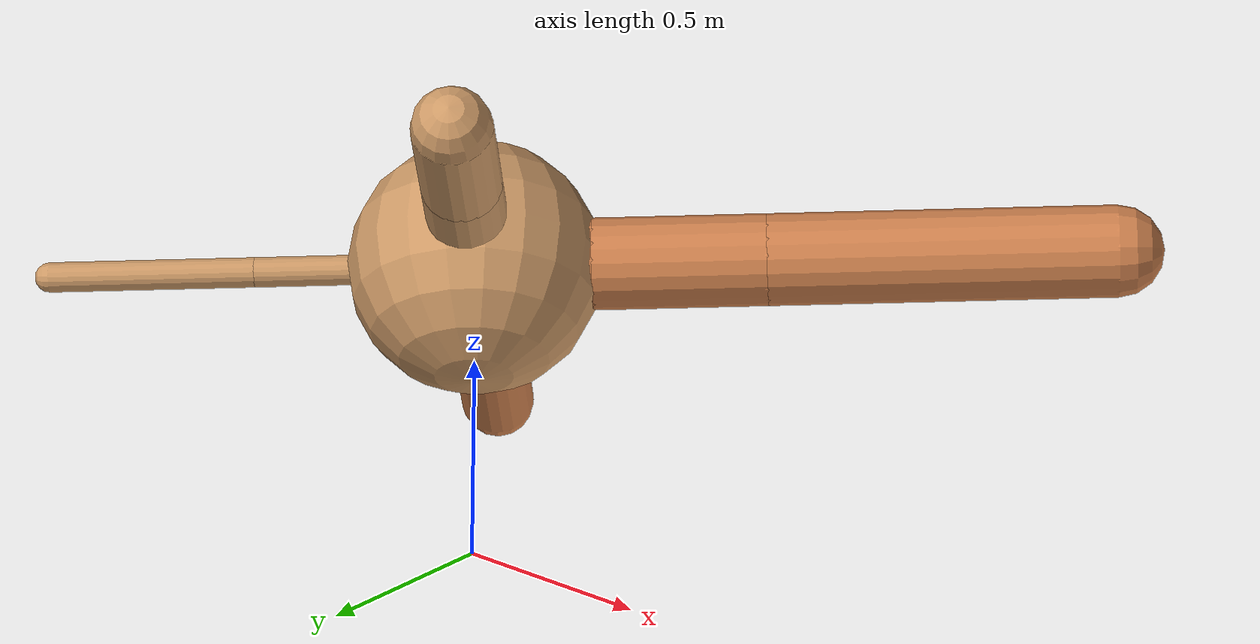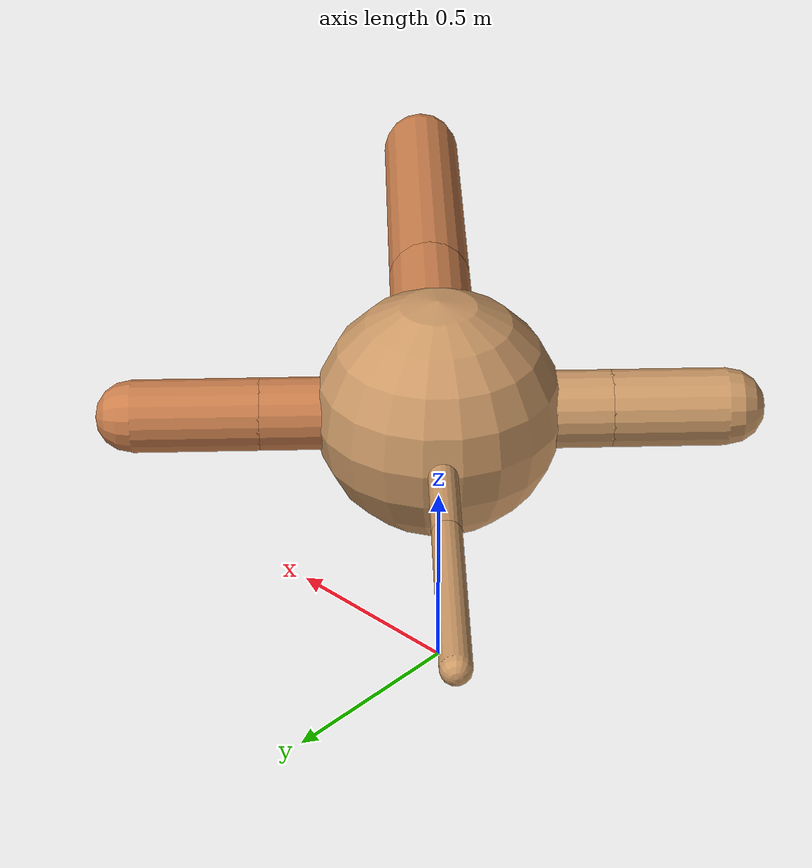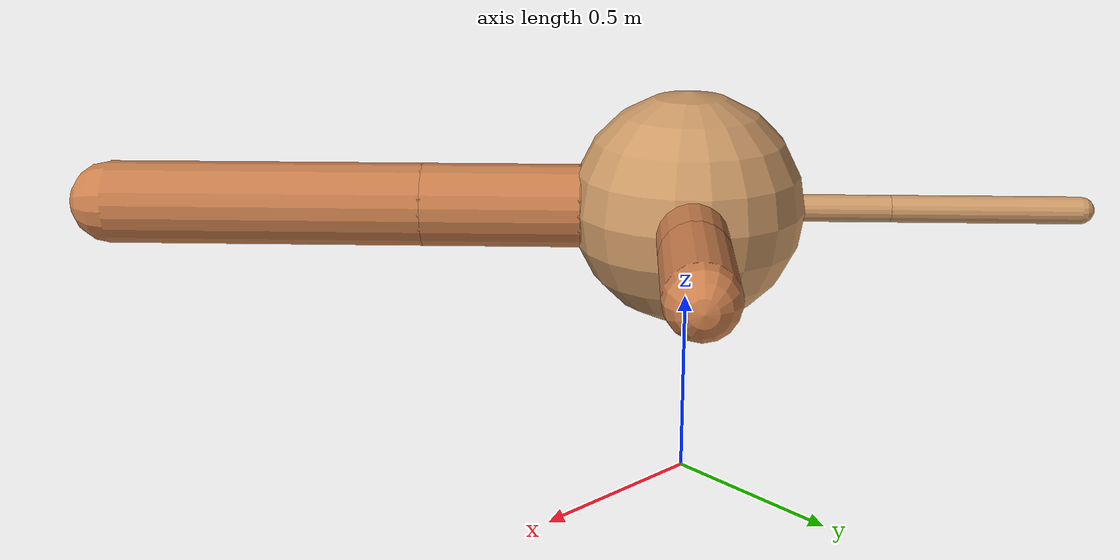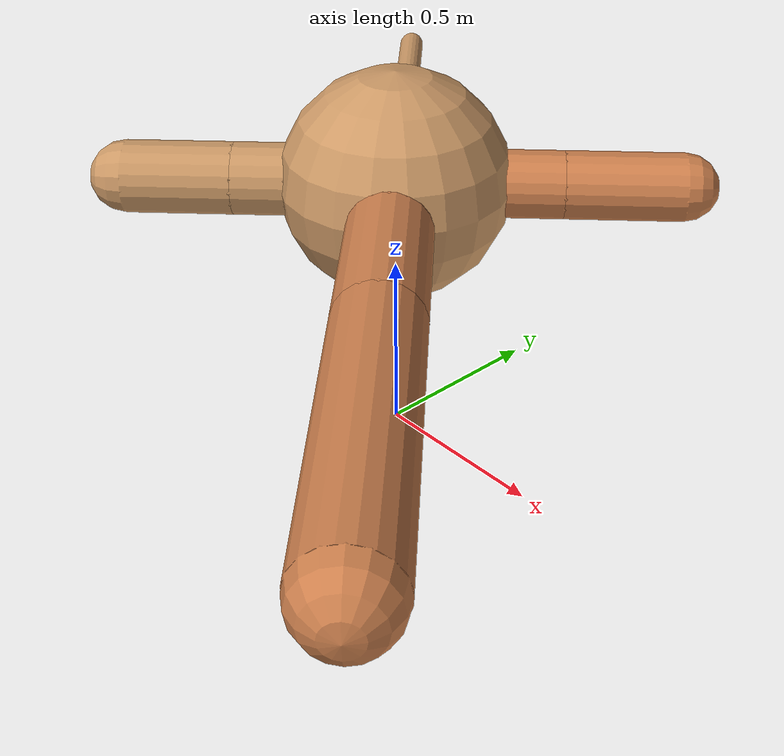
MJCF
<?xml version="1.0" ?>
<mujoco model="ant">

	<compiler angle="degree" coordinate="local" inertiafromgeom="true"/>

	<option integrator="RK4" timestep="0.01"/>

	<custom>

		<numeric data="0.0 0.0 0.55 1.0 0.0 0.0 0.0 0.0 1.0 0.0 -1.0 0.0 -1.0 0.0 1.0" name="init_qpos"/>

	</custom>

	<default>

		<joint armature="1" damping="1" limited="true"/>

		<geom conaffinity="0" condim="3" density="5.0" friction="1.5 0.1 0.1" margin="0.01" rgba="0.8 0.6 0.4 1"/>

	</default>

	<worldbody>

		<body name="torso" pos="0 0 0.75">

			<geom name="torso_geom" pos="0 0 0" size="0.307358265423439" type="sphere"/>

			<!--joint armature="0" damping="0" limited="false" margin="0.01" name="root" pos="0 0 0" type="free"/-->

			<body name="front_left_leg" pos="0 0 0">

				<geom fromto="0 0 0 0.2 0.2 0" name="aux_1_geom" size="0.09003420831048628" type="capsule" rgba=".8 .5 .3 1"/>

				<body name="aux_1" pos="0.2 0.2 0">

					<joint axis="0 0 1" name="hip_1" pos="0.0 0.0 0.0" range="-40 40" type="hinge"/>

					<geom fromto="0 0 0 0.11082721840544918 0.11082721840544918 0" name="left_leg_geom" size="0.09003420831048628" type="capsule" rgba=".8 .5 .3 1"/>

					<body pos="0.11082721840544918 0.11082721840544918 0" name="front_left_foot">

						<joint axis="-1 1 0" name="ankle_1" pos="0.0 0.0 0.0" range="30 100" type="hinge"/>

						<geom fromto="0 0 0 0.22165443681089836 0.22165443681089836 0" name="left_ankle_geom" size="0.09003420831048628" type="capsule" rgba=".8 .5 .3 1"/>

					</body>

				</body>

			</body>

			<body name="front_right_leg" pos="0 0 0">

				<geom fromto="0 0 0 -0.2 0.2 0" name="aux_2_geom" size="0.03605813429829421" type="capsule"/>

				<body name="aux_2" pos="-0.2 0.2 0">

					<joint axis="0 0 1" name="hip_2" pos="0.0 0.0 0.0" range="-40 40" type="hinge"/>

					<geom fromto="0 0 0 -0.17532227104638434 0.17532227104638434 0" name="right_leg_geom" size="0.03605813429829421" type="capsule"/>

					<body pos="-0.17532227104638434 0.17532227104638434 0" name="front_right_foot">

						<joint axis="1 1 0" name="ankle_2" pos="0.0 0.0 0.0" range="-100 -30" type="hinge"/>

						<geom fromto="0 0 0 -0.3506445420927687 0.3506445420927687 0" name="right_ankle_geom" size="0.03605813429829421" type="capsule"/>

					</body>

				</body>

			</body>

			<body name="left_back_leg" pos="0 0 0">

				<geom fromto="0 0 0 -0.2 -0.2 0" name="aux_3_geom" size="0.09638272757181103" type="capsule"/>

				<body name="aux_3" pos="-0.2 -0.2 0">

					<joint axis="0 0 1" name="hip_3" pos="0.0 0.0 0.0" range="-40 40" type="hinge"/>

					<geom fromto="0 0 0 -0.10092074772142634 -0.10092074772142634 0" name="back_leg_geom" size="0.09638272757181103" type="capsule"/>

					<body pos="-0.10092074772142634 -0.10092074772142634 0" name="left_back_foot">

						<joint axis="-1 1 0" name="ankle_3" pos="0.0 0.0 0.0" range="-100 -30" type="hinge"/>

						<geom fromto="0 0 0 -0.20184149544285268 -0.20184149544285268 0" name="third_ankle_geom" size="0.09638272757181103" type="capsule"/>

					</body>

				</body>

			</body>

			<body name="right_back_leg" pos="0 0 0">

				<geom fromto="0 0 0 0.2 -0.2 0" name="aux_4_geom" size="0.11057564840858014" type="capsule" rgba=".8 .5 .3 1"/>

				<body name="aux_4" pos="0.2 -0.2 0">

					<joint axis="0 0 1" name="hip_4" pos="0.0 0.0 0.0" range="-40 40" type="hinge"/>

					<geom fromto="0 0 0 0.2955875681131646 -0.2955875681131646 0" name="rightback_leg_geom" size="0.11057564840858014" type="capsule" rgba=".8 .5 .3 1"/>

					<body pos="0.2955875681131646 -0.2955875681131646 0" name="right_back_foot">

						<joint axis="1 1 0" name="ankle_4" pos="0.0 0.0 0.0" range="30 100" type="hinge"/>

						<geom fromto="0 0 0 0.5911751362263292 -0.5911751362263292 0" name="fourth_ankle_geom" size="0.11057564840858014" type="capsule" rgba=".8 .5 .3 1"/>

					</body>

				</body>

			</body>

		</body>

	</worldbody>

	<actuator>

		<motor ctrllimited="true" ctrlrange="-1.0 1.0" joint="hip_4" gear="150"/>

		<motor ctrllimited="true" ctrlrange="-1.0 1.0" joint="ankle_4" gear="150"/>

		<motor ctrllimited="true" ctrlrange="-1.0 1.0" joint="hip_1" gear="150"/>

		<motor ctrllimited="true" ctrlrange="-1.0 1.0" joint="ankle_1" gear="150"/>

		<motor ctrllimited="true" ctrlrange="-1.0 1.0" joint="hip_2" gear="150"/>

		<motor ctrllimited="true" ctrlrange="-1.0 1.0" joint="ankle_2" gear="150"/>

		<motor ctrllimited="true" ctrlrange="-1.0 1.0" joint="hip_3" gear="150"/>

		<motor ctrllimited="true" ctrlrange="-1.0 1.0" joint="ankle_3" gear="150"/>

	</actuator>

</mujoco>
